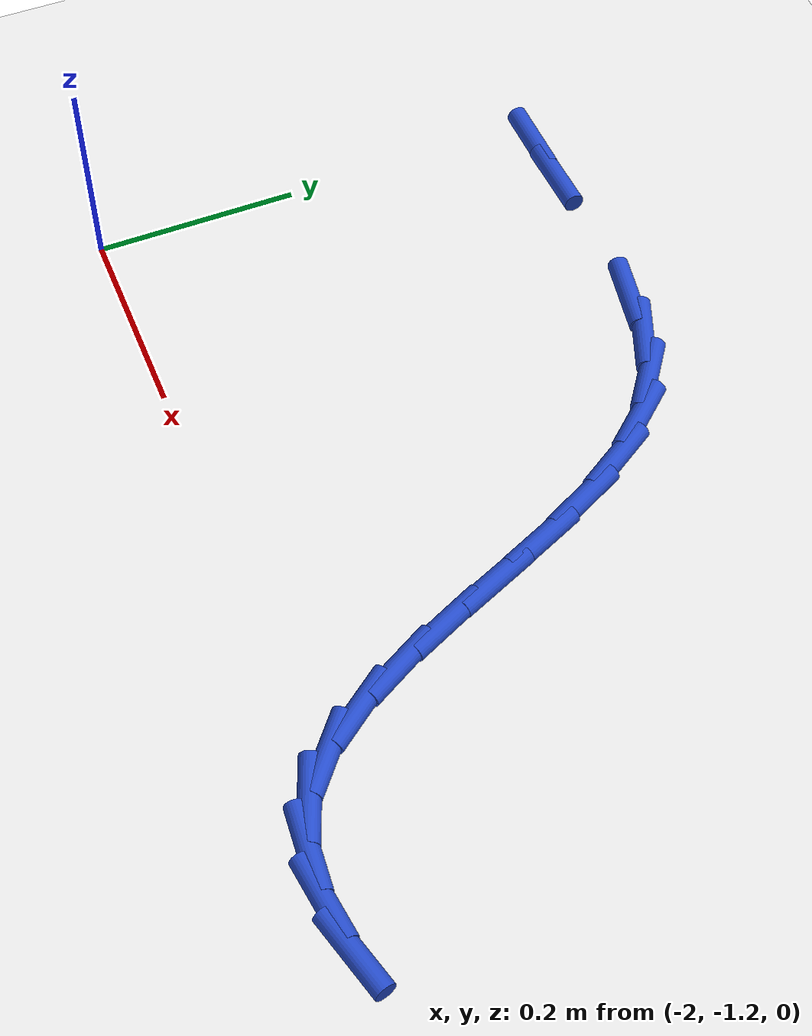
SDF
<sdf version="1.6">
 <world name="default">
  <model name="ground_plane">
   <static>1</static>
   <link name="link">
    <collision name="collision">
     <geometry><plane><normal>0 0 1</normal><size>100 100</size></plane></geometry>
     <surface><friction><ode><mu>100</mu><mu2>50</mu2></ode></friction></surface>
    </collision>
    <visual name="visual">
     <cast_shadows>0</cast_shadows>
     <geometry><plane><normal>0 0 1</normal><size>100 100</size></plane></geometry>
     <material>
      <script><uri>file://media/materials/scripts/gazebo.material</uri><name>Gazebo/WhiteGlow</name></script>
     </material>
    </visual>
   </link>
  </model>
  <model name="line">
   <link name="link_87">
    <pose>-1.9707680531151892 -0.746487591572637 0.01 0 1.57 0.004136916514954584</pose>
    <collision name="collision">
     <geometry><cylinder><radius>0.01</radius><length>0.08</length></cylinder></geometry>
    </collision>
    <visual name="visual">
     <material>
      <script><name>Gazebo/Blue</name><uri>file://media/materials/scripts/gazebo.material</uri></script>
     </material>
     <geometry><cylinder><radius>0.01</radius><length>0.08</length></cylinder></geometry>
    </visual>
   </link>
   <link name="link_88">
    <pose>-1.9142020799997166 -0.7462535815293142 0.01 0 1.57 0.02494096589458997</pose>
    <collision name="collision">
     <geometry><cylinder><radius>0.01</radius><length>0.08</length></cylinder></geometry>
    </collision>
    <visual name="visual">
     <material>
      <script><name>Gazebo/Blue</name><uri>file://media/materials/scripts/gazebo.material</uri></script>
     </material>
     <geometry><cylinder><radius>0.01</radius><length>0.08</length></cylinder></geometry>
    </visual>
   </link>
   <link name="link_91">
    <pose>-1.745430183406272 -0.7481945399480567 0.01 0 1.57 -0.18744741719996655</pose>
    <collision name="collision">
     <geometry><cylinder><radius>0.01</radius><length>0.08</length></cylinder></geometry>
    </collision>
    <visual name="visual">
     <material>
      <script><name>Gazebo/Blue</name><uri>file://media/materials/scripts/gazebo.material</uri></script>
     </material>
     <geometry><cylinder><radius>0.01</radius><length>0.08</length></cylinder></geometry>
    </visual>
   </link>
   <link name="link_92">
    <pose>-1.694212341910603 -0.757909239763158 0.01 0 1.57 -0.37694434769025675</pose>
    <collision name="collision">
     <geometry><cylinder><radius>0.01</radius><length>0.08</length></cylinder></geometry>
    </collision>
    <visual name="visual">
     <material>
      <script><name>Gazebo/Blue</name><uri>file://media/materials/scripts/gazebo.material</uri></script>
     </material>
     <geometry><cylinder><radius>0.01</radius><length>0.08</length></cylinder></geometry>
    </visual>
   </link>
   <link name="link_93">
    <pose>-1.6478796206582516 -0.7762511551623287 0.01 0 1.57 -0.6296057664192739</pose>
    <collision name="collision">
     <geometry><cylinder><radius>0.01</radius><length>0.08</length></cylinder></geometry>
    </collision>
    <visual name="visual">
     <material>
      <script><name>Gazebo/Blue</name><uri>file://media/materials/scripts/gazebo.material</uri></script>
     </material>
     <geometry><cylinder><radius>0.01</radius><length>0.08</length></cylinder></geometry>
    </visual>
   </link>
   <link name="link_94">
    <pose>-1.6077490799376994 -0.805486699177137 0.01 0 1.57 -0.8602631397643337</pose>
    <collision name="collision">
     <geometry><cylinder><radius>0.01</radius><length>0.08</length></cylinder></geometry>
    </collision>
    <visual name="visual">
     <material>
      <script><name>Gazebo/Blue</name><uri>file://media/materials/scripts/gazebo.material</uri></script>
     </material>
     <geometry><cylinder><radius>0.01</radius><length>0.08</length></cylinder></geometry>
    </visual>
   </link>
   <link name="link_95">
    <pose>-1.5736481150785209 -0.8451179613372221 0.01 0 1.57 -1.0164147697314</pose>
    <collision name="collision">
     <geometry><cylinder><radius>0.01</radius><length>0.08</length></cylinder></geometry>
    </collision>
    <visual name="visual">
     <material>
      <script><name>Gazebo/Blue</name><uri>file://media/materials/scripts/gazebo.material</uri></script>
     </material>
     <geometry><cylinder><radius>0.01</radius><length>0.08</length></cylinder></geometry>
    </visual>
   </link>
   <link name="link_96">
    <pose>-1.5442770835854334 -0.8925556232162346 0.01 0 1.57 -1.1122242249419418</pose>
    <collision name="collision">
     <geometry><cylinder><radius>0.01</radius><length>0.08</length></cylinder></geometry>
    </collision>
    <visual name="visual">
     <material>
      <script><name>Gazebo/Blue</name><uri>file://media/materials/scripts/gazebo.material</uri></script>
     </material>
     <geometry><cylinder><radius>0.01</radius><length>0.08</length></cylinder></geometry>
    </visual>
   </link>
   <link name="link_97">
    <pose>-1.5183084675466254 -0.9451586388711282 0.01 0 1.57 -1.1618089078819454</pose>
    <collision name="collision">
     <geometry><cylinder><radius>0.01</radius><length>0.08</length></cylinder></geometry>
    </collision>
    <visual name="visual">
     <material>
      <script><name>Gazebo/Blue</name><uri>file://media/materials/scripts/gazebo.material</uri></script>
     </material>
     <geometry><cylinder><radius>0.01</radius><length>0.08</length></cylinder></geometry>
    </visual>
   </link>
   <link name="link_98">
    <pose>-1.4944147490502857 -1.0002859623588551 0.01 0 1.57 -1.172521159680965</pose>
    <collision name="collision">
     <geometry><cylinder><radius>0.01</radius><length>0.08</length></cylinder></geometry>
    </collision>
    <visual name="visual">
     <material>
      <script><name>Gazebo/Blue</name><uri>file://media/materials/scripts/gazebo.material</uri></script>
     </material>
     <geometry><cylinder><radius>0.01</radius><length>0.08</length></cylinder></geometry>
    </visual>
   </link>
   <link name="link_99">
    <pose>-1.471268410184602 -1.0552965477363678 0.01 0 1.57 -1.1445621893062383</pose>
    <collision name="collision">
     <geometry><cylinder><radius>0.01</radius><length>0.08</length></cylinder></geometry>
    </collision>
    <visual name="visual">
     <material>
      <script><name>Gazebo/Blue</name><uri>file://media/materials/scripts/gazebo.material</uri></script>
     </material>
     <geometry><cylinder><radius>0.01</radius><length>0.08</length></cylinder></geometry>
    </visual>
   </link>
   <link name="link_100">
    <pose>-1.4475419330377624 -1.1075493490606194 0.01 0 1.57 -1.0701769807290038</pose>
    <collision name="collision">
     <geometry><cylinder><radius>0.01</radius><length>0.08</length></cylinder></geometry>
    </collision>
    <visual name="visual">
     <material>
      <script><name>Gazebo/Blue</name><uri>file://media/materials/scripts/gazebo.material</uri></script>
     </material>
     <geometry><cylinder><radius>0.01</radius><length>0.08</length></cylinder></geometry>
    </visual>
   </link>
   <link name="link_101">
    <pose>-1.4219077996979548 -1.15440332038856 0.01 0 1.57 -0.9312852704834664</pose>
    <collision name="collision">
     <geometry><cylinder><radius>0.01</radius><length>0.08</length></cylinder></geometry>
    </collision>
    <visual name="visual">
     <material>
      <script><name>Gazebo/Blue</name><uri>file://media/materials/scripts/gazebo.material</uri></script>
     </material>
     <geometry><cylinder><radius>0.01</radius><length>0.08</length></cylinder></geometry>
    </visual>
   </link>
   <link name="link_102">
    <pose>-1.3930384922533683 -1.1932174157771438 0.01 0 1.57 -0.6995411871315361</pose>
    <collision name="collision">
     <geometry><cylinder><radius>0.01</radius><length>0.08</length></cylinder></geometry>
    </collision>
    <visual name="visual">
     <material>
      <script><name>Gazebo/Blue</name><uri>file://media/materials/scripts/gazebo.material</uri></script>
     </material>
     <geometry><cylinder><radius>0.01</radius><length>0.08</length></cylinder></geometry>
    </visual>
   </link>
   <link name="link_103">
    <pose>-1.3596064927921905 -1.2213505892833223 0.01 0 1.57 -0.37889989211413816</pose>
    <collision name="collision">
     <geometry><cylinder><radius>0.01</radius><length>0.08</length></cylinder></geometry>
    </collision>
    <visual name="visual">
     <material>
      <script><name>Gazebo/Blue</name><uri>file://media/materials/scripts/gazebo.material</uri></script>
     </material>
     <geometry><cylinder><radius>0.01</radius><length>0.08</length></cylinder></geometry>
    </visual>
   </link>
   <link name="link_104">
    <pose>-1.3206381715436069 -1.2368653460072616 0.01 0 1.57 -0.0873980718384954</pose>
    <collision name="collision">
     <geometry><cylinder><radius>0.01</radius><length>0.08</length></cylinder></geometry>
    </collision>
    <visual name="visual">
     <material>
      <script><name>Gazebo/Blue</name><uri>file://media/materials/scripts/gazebo.material</uri></script>
     </material>
     <geometry><cylinder><radius>0.01</radius><length>0.08</length></cylinder></geometry>
    </visual>
   </link>
   <link name="link_105">
    <pose>-1.2766177423717717 -1.2407224724307249 0.01 0 1.57 0.12572063078629084</pose>
    <collision name="collision">
     <geometry><cylinder><radius>0.01</radius><length>0.08</length></cylinder></geometry>
    </collision>
    <visual name="visual">
     <material>
      <script><name>Gazebo/Blue</name><uri>file://media/materials/scripts/gazebo.material</uri></script>
     </material>
     <geometry><cylinder><radius>0.01</radius><length>0.08</length></cylinder></geometry>
    </visual>
   </link>
   <link name="link_106">
    <pose>-1.2284047667826674 -1.2346289688651677 0.01 0 1.57 0.27128560058819773</pose>
    <collision name="collision">
     <geometry><cylinder><radius>0.01</radius><length>0.08</length></cylinder></geometry>
    </collision>
    <visual name="visual">
     <material>
      <script><name>Gazebo/Blue</name><uri>file://media/materials/scripts/gazebo.material</uri></script>
     </material>
     <geometry><cylinder><radius>0.01</radius><length>0.08</length></cylinder></geometry>
    </visual>
   </link>
  </model>
 </world>
</sdf>
